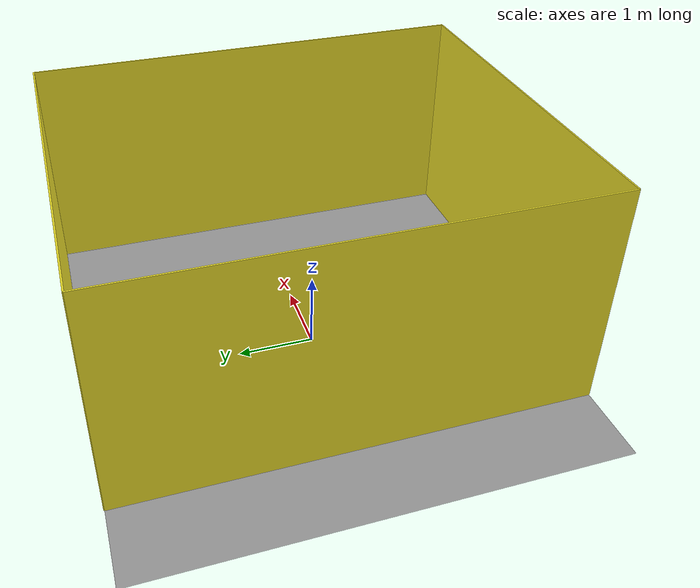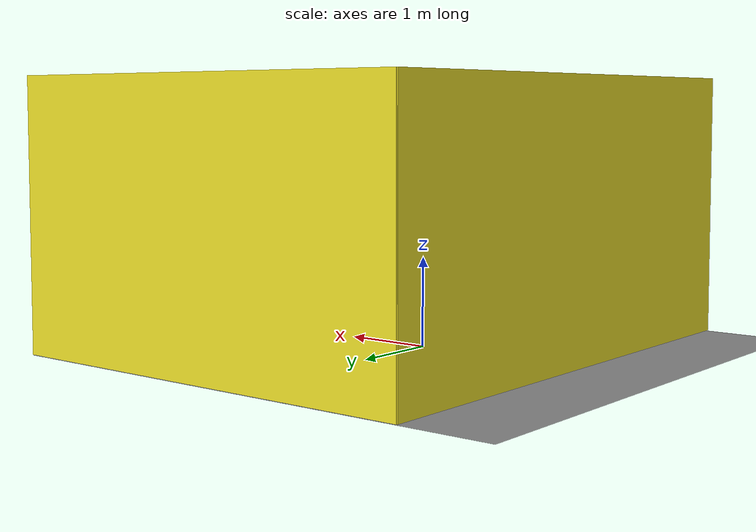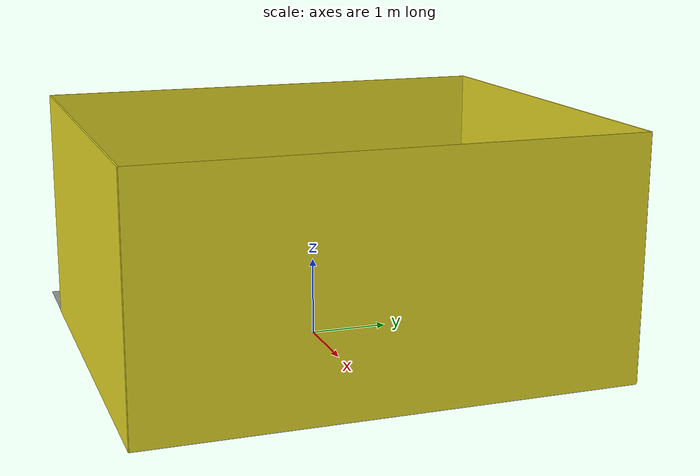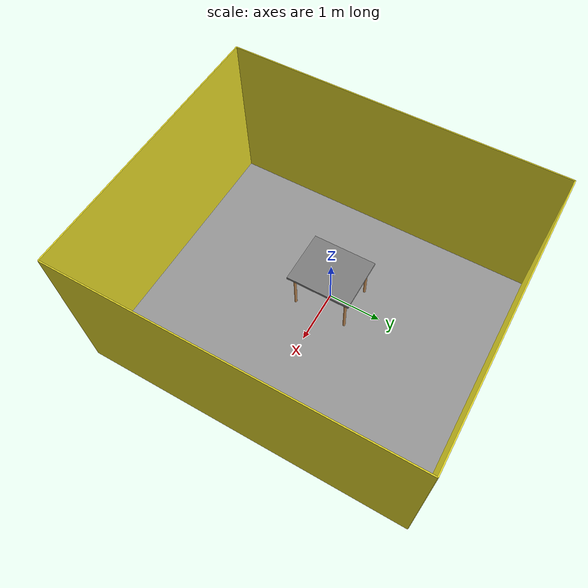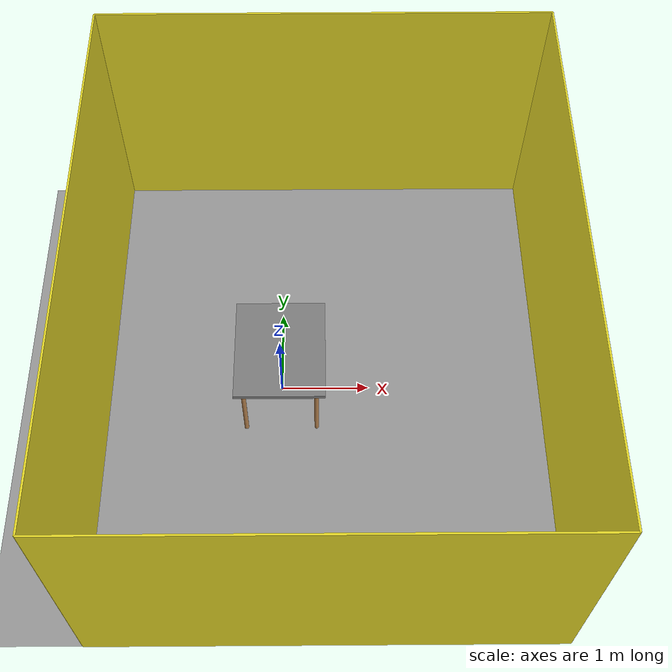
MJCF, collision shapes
<mujoco model="table_arena">
  <compiler angle="radian" inertiagrouprange="0 0" autolimits="true" />
  <asset>
    <texture builtin="gradient" height="256" rgb1=".9 .9 1." rgb2=".2 .3 .4" type="skybox" width="256" />
    <texture file="../assets/textures/gray_ceramic_tile.png" type="2d" name="texplane" />
    <material name="floorplane" reflectance="0.0" shininess="0.0" specular="0.0" texrepeat="3 3" texture="texplane" texuniform="true" />
    <texture file="../assets/textures/martin_novak_wood_table.png" type="cube" name="tex-table" />
    <material name="table_texture" reflectance="0.0" shininess="0.0" specular="0.2" texrepeat="1 1" texture="tex-table" />
    <texture file="../assets/textures/martin_novak_wood_table.png" type="cube" name="tex-table-legs" />
    <material name="table_legs" reflectance="0.8" shininess="0.8" texrepeat="1 1" texture="tex-table-legs" />
    <texture file="../assets/textures/yellow_linen_wall_texture.png" type="2d" name="tex-wall" />
    <material name="walls_mat" reflectance="0.0" shininess="0.3" specular="0.8" texrepeat="3 3" texture="tex-wall" texuniform="true" />
    <texture name="textable" builtin="flat" height="512" width="512" rgb1="0.8 0.8 0.8" rgb2="0.8 0.8 0.8" />
    <material name="table_mat" texture="textable" />
    <texture file="../assets/scenes/kitchen_background/kitchen_background.png" name="tex-kitchen_background" type="2d" />
    <material name="kitchen_background" reflectance="0.5" texrepeat="1 1" texture="tex-kitchen_background" texuniform="false" />
    <mesh file="../assets/scenes/kitchen_background/visual/kitchen_background_vis.msh" name="kitchen_background_vis" scale="0.01 0.01 0.01" />
    <texture file="../assets/scenes/kitchen_background_pot/kitchen_background_pot.png" name="tex-kitchen_background_pot" type="2d" />
    <material name="kitchen_background_pot" reflectance="0.5" texrepeat="1 1" texture="tex-kitchen_background_pot" texuniform="false" />
    <mesh file="../assets/scenes/kitchen_background_pot/visual/kitchen_background_pot_vis.msh" name="kitchen_background_pot_vis" scale="0.01 0.01 0.01" />
    <material name="kitchen_background_hot_pot" reflectance="0.5" rgba="0.4 0.4 0.4 1.0" />
    <mesh file="../assets/scenes/kitchen_background_hot_pot/visual/kitchen_background_hot_pot_vis.msh" name="kitchen_background_hot_pot_vis" scale="0.01 0.01 0.01" />
    <texture file="../assets/scenes/kitchen_background_stove/kitchen_background_stove.png" name="tex-kitchen_background_stove" type="2d" />
    <material name="kitchen_background_stove" reflectance="0.5" texrepeat="1 1" texture="tex-kitchen_background_stove" texuniform="false" />
    <mesh file="../assets/scenes/kitchen_background_stove/visual/kitchen_background_stove_vis.msh" name="kitchen_background_stove_vis" scale="0.01 0.01 0.01" />
    <texture file="../assets/scenes/fridge/metal.png" name="tex-kitchen_background_fridge" type="2d" />
    <material name="kitchen_background_fridge" reflectance="0.9" texrepeat="1 1" texture="tex-kitchen_background_fridge" texuniform="false" />
    <mesh file="../assets/scenes/fridge/visual/fridge_vis.msh" name="kitchen_background_fridge_vis" scale="0.01 0.01 0.01" />
  </asset>
  <worldbody>
    <geom condim="3" group="1" material="floorplane" name="floor" pos="0 0 0" size="3 3 .125" type="plane" />
    <geom pos="-1.65 0.0 0.90" quat="0 0 0 1" type="mesh" mesh="kitchen_background_stove_vis" conaffinity="0" contype="0" group="1" material="kitchen_background_stove" />
    <geom pos="-1.50 0.23 0.93" quat="0.30 0 0 0.90" type="mesh" mesh="kitchen_background_hot_pot_vis" conaffinity="0" contype="0" group="1" material="kitchen_background_hot_pot" />
    <geom pos="-1.85 -0.85 0.90" quat="0 0 0 1" type="mesh" mesh="kitchen_background_pot_vis" conaffinity="0" contype="0" group="1" material="kitchen_background_pot" />
    <geom pos="-1.75 -2.4 0" quat="0 0 0 1" type="mesh" mesh="kitchen_background_fridge_vis" conaffinity="0" contype="0" group="1" material="kitchen_background_fridge" />
    <geom pos="-1.65 0.0 0.0" quat="0 0 0 1" type="mesh" mesh="kitchen_background_vis" conaffinity="0" contype="0" group="1" material="kitchen_background" />
    <light name="light_kitchen" diffuse=".8 .8 .8" dir="0 0 -1" directional="true" pos="-1.75 0 1.6" specular="0.8 0.8 0.8" castshadow="false" />
    <geom pos="0.5 3 1.5" quat="0.7071 0.7071 0 0" size="2.5 1.5 0.01" type="box" conaffinity="0" contype="0" group="1" name="wall_left_visual" material="walls_mat" />
    <geom pos="0.5 -3 1.5" quat="0.7071 -0.7071 0 0" size="2.5 1.5 0.01" type="box" conaffinity="0" contype="0" group="1" name="wall_right_visual" material="walls_mat" />
    <geom pos="-2 0 1.5" quat="0.5 0.5 0.5 0.5" size="3 1.5 0.01" type="box" conaffinity="0" contype="0" group="1" name="wall_rear_visual" material="walls_mat" />
    <geom pos="3 0 1.5" quat="0.5 0.5 -0.5 -0.5" size="3 1.5 0.01" type="box" conaffinity="0" contype="0" group="1" name="wall_front_visual" material="walls_mat" />
    <body name="table" pos="0.0 0.0 0.875">
      <geom pos="0 0 0" size="0.5 0.6 0.025" type="box" group="0" name="table_collision" friction="1.0 0.005 0.0001" />
      <geom pos="0 0 0" size="0.5 0.6 0.025" type="box" conaffinity="0" contype="0" group="1" name="table_visual" material="table_texture" />
      <site pos="0.0 0.0 0.025" name="table_top" size="0.001 0.001 0.001" rgba="0 0 0 0" />
      <geom pos="0.4 0.5 -0.4375" size="0.025 0.4375" type="cylinder" conaffinity="0" contype="0" group="1" name="table_leg1_visual" material="table_legs" />
      <geom pos="-0.4 0.5 -0.4375" size="0.025 0.4375" type="cylinder" conaffinity="0" contype="0" group="1" name="table_leg2_visual" material="table_legs" />
      <geom pos="-0.4 -0.5 -0.4375" size="0.025 0.4375" type="cylinder" conaffinity="0" contype="0" group="1" name="table_leg3_visual" material="table_legs" />
      <geom pos="0.4 -0.5 -0.4375" size="0.025 0.4375" type="cylinder" conaffinity="0" contype="0" group="1" name="table_leg4_visual" material="table_legs" />
    </body>
    <light name="light1" diffuse=".8 .8 .8" dir="0 -.15 -1" directional="false" pos="1 1 4.0" specular="0.3 0.3 0.3" castshadow="false" />
    <light name="light2" diffuse=".8 .8 .8" dir="0 -.15 -1" directional="false" pos="-3. -3. 4.0" specular="0.3 0.3 0.3" castshadow="false" />
    <camera mode="fixed" name="frontview" pos="1.0 0.0 1.48" quat="0.56 0.43 0.43 0.56" />
    <camera mode="fixed" name="birdview" pos="-0.2 0 3.0" quat="0.7071 0 0 0.7071" />
    <camera mode="fixed" name="agentview" pos="0.6586131746834771 0.0 1.6103500240372424" quat="0.6380177736282349 0.3048497438430786 0.30484986305236816 0.6380177736282349" />
    <camera mode="fixed" name="sideview" pos="-0.05651774593317116 1.2761224129427358 1.4879572214102434" quat="0.009905065491771751 0.006877963156909582 0.5912228352893879 0.806418094001364" />
    <site name="workspace" pos="0.0 0.0 0.9" size="0.001" rgba="0 0 0 0" />
    <site name="zone_plane" pos="0.0 0.0 0.875" size="0.001" rgba="0 0 0 0" />
  </worldbody>
</mujoco>
